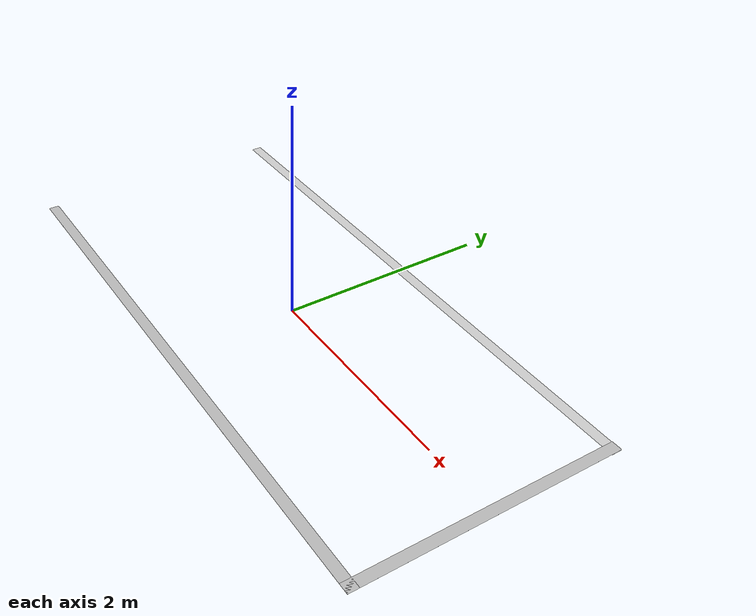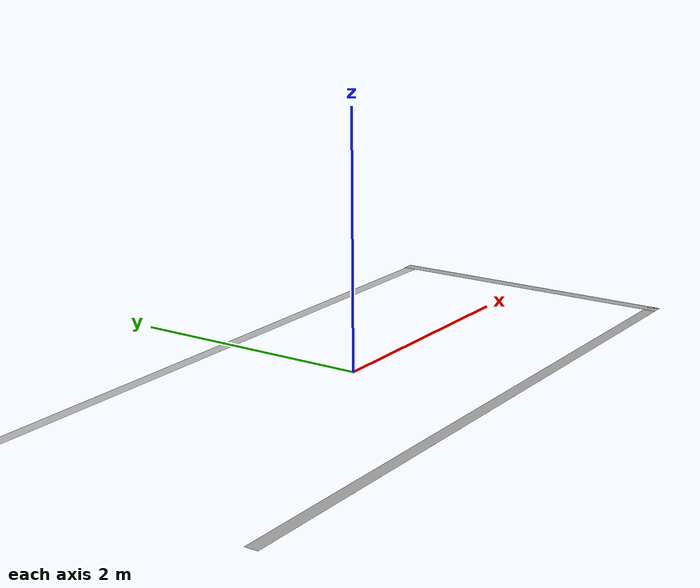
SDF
<?xml version="1.0" encoding="UTF-8"?>
<sdf version="1.6">
   <model name="parking_slot">
      <static>true</static>
      <link name="link">
         <collision name="collision">
            <geometry>
               <plane>
                  <normal>0 0 1</normal>
                  <size>5.5 2.5</size>
               </plane>
            </geometry>
            <surface>
               <friction>
                  <ode>
                     <mu>100</mu>
                     <mu2>50</mu2>
                  </ode>
               </friction>
            </surface>
         </collision>

         <visual name="visual1">
            <pose frame=''>0 1.2 0.001 0 -0 0</pose>
            <cast_shadows>false</cast_shadows>
            <geometry>
               <plane>
                  <normal>0 0 1</normal>
                  <size>5.5 0.1</size>
               </plane>
            </geometry>
            <material>
               <script>
                  <uri>model://parking_slot/materials/scripts</uri>
                  <uri>model://parking_slot/materials/textures/</uri>
                  <name>Border/Image</name>
               </script>
            </material>
         </visual>
         <visual name="visual2">
            <pose frame=''>0 -1.2 0.001 0 -0 0</pose>
            <cast_shadows>false</cast_shadows>
            <geometry>
               <plane>
                  <normal>0 0 1</normal>
                  <size>5.5 0.1</size>
               </plane>
            </geometry>
            <material>
               <script>
                  <uri>model://parking_slot/materials/scripts</uri>
                  <uri>model://parking_slot/materials/textures/</uri>
                  <name>Border/Image</name>
               </script>
            </material>
         </visual>
         <visual name="visual3">
            <pose frame=''>2.7 0 0.001 0 -0 0</pose>
            <cast_shadows>false</cast_shadows>
            <geometry>
               <plane>
                  <normal>0 0 1</normal>
                  <size>0.1 2.5</size>
               </plane>
            </geometry>
            <material>
               <script>
                  <uri>model://parking_slot/materials/scripts</uri>
                  <uri>model://parking_slot/materials/textures/</uri>
                  <name>Border/Image</name>
               </script>
            </material>
         </visual>
      </link>
   </model>
</sdf>
